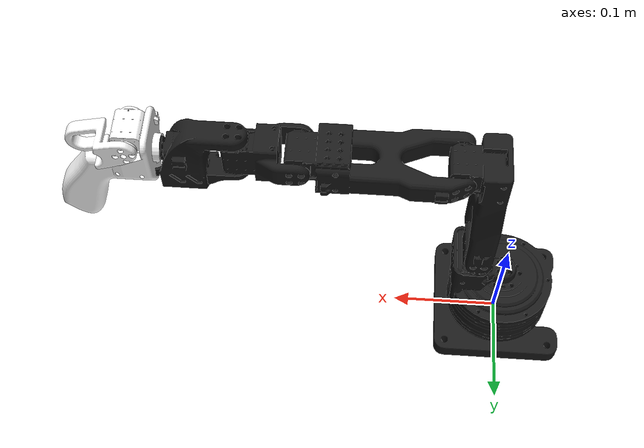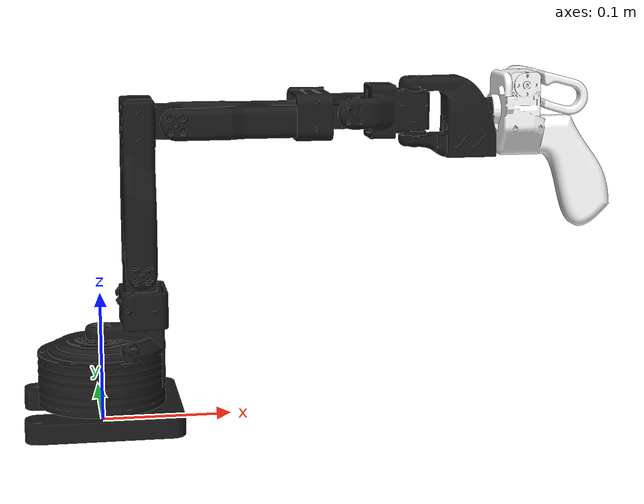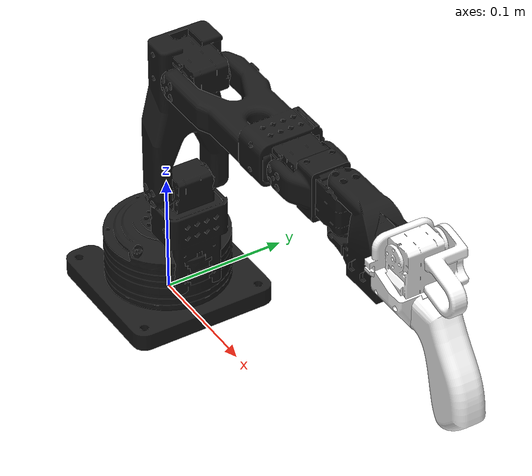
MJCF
<mujoco model="so101_6dofleader">
  <compiler angle="radian" meshdir="../assets" autolimits="true"/>

  <option timestep="0.002" solver="Newton" iterations="50" tolerance="1e-10"/>

  <default>
    <default class="so101_6dofleader">
      <default class="visual">
        <geom type="mesh" contype="0" conaffinity="0" group="2"/>
      </default>
      <default class="collision">
        <geom group="3"/>
      </default>
    </default>
    <default class="sts3215">
      <geom contype="0" conaffinity="0"/>
      <joint damping="0.60" frictionloss="0.052" armature="0.028"/>
      <position kp="50" dampratio="1"/>
    </default>
  </default>

  <asset>
    <mesh name="link0" file="link0.STL"/>
    <mesh name="link1" file="link1.STL"/>
    <mesh name="link2" file="link2.STL"/>
    <mesh name="link3" file="link3.STL"/>
    <mesh name="link4" file="link4.STL"/>
    <mesh name="link5" file="link5.STL"/>
    <mesh name="link6" file="link6.STL"/>
    <mesh name="link7" file="link7.STL"/>
  </asset>

  <worldbody>
    <geom type="mesh" rgba="0.1 0.1 0.1 1" mesh="link0" class="visual"/>
    <geom type="mesh" mesh="link0" class="visual"/>
    <body name="link1" pos="0 0 0.018957" childclass="so101_6dofleader">
      <inertial pos="0.030989 6.7477e-05 0.070621" quat="0.698515 0.0490132 0.042294 0.712661" mass="0.2" diaginertia="0.0001 0.0001 0.00005"/>
      <joint name="joint1" pos="0 0 0" axis="0 0 1" range="-1.9198621771937616 1.9198621771937634" class="sts3215" ref="0"/>
      <geom type="mesh" rgba="0.1 0.1 0.1 1" mesh="link1" class="visual"/>
      <geom type="mesh" mesh="link1" class="visual"/>

      <body name="link2" pos="0.0306 0 0.10044">
        <inertial pos="0.0074975 -0.00041663 0.088369" quat="0.999937 0.00717546 -0.00848347 0.00167263" mass="0.10147" diaginertia="0.0001 0.0001 0.00005"/>
        <joint name="joint2" pos="0 0 0" axis="0 1 0" range="-1.7453292519943224 1.7453292519943366" class="sts3215" ref="0"/>
        <geom type="mesh" rgba="0.1 0.1 0.1 1" mesh="link2" class="visual"/>
        <geom type="mesh" mesh="link2" class="collision"/>
        <body name="link3" pos="0.028 0 0.11248">
          <inertial pos="0.095367 -0.0010139 0.0029488" quat="-0.00465535 0.713391 0.00569161 0.700727" mass="0.09724" diaginertia="5.81959e-05 4.73186e-05 2.10425e-05"/>
          <joint name="joint3" pos="0 0 0" axis="0 1 0" range="-1.7 1.7" class="sts3215" ref="0"/>
          <geom type="mesh" rgba="0.1 0.1 0.1 1" mesh="link3"/>
          <body name="link4" pos="0.13485 0 0.0052">
            <inertial pos="0.035618 -0.0010712 -0.00022605" quat="0.000479801 0.707579 -0.000372452 0.706634" mass="0.061621" diaginertia="1.2754e-05 9.95891e-06 6.12958e-06"/>
            <joint name="joint4" pos="0 0 0" axis="0 1 0" range="-1.7 1.7" class="sts3215" ref="0"/>
            <geom type="mesh" rgba="0.1 0.1 0.1 1" mesh="link4"/>
            <body name="link5" pos="0.05175 -0.0012 0">
              <inertial pos="0.0395734 0.000195111 -0.0125068" quat="0.697286 -0.0344273 -0.0342671 0.715145" mass="0.067412" diaginertia="1.82556e-05 1.66275e-05 8.78104e-06"/>
              <joint name="joint5" pos="0 0 0" axis="0 0 1" range="-1.9 1.9" class="sts3215" ref="0"/>
              <geom type="mesh" rgba="0.1 0.1 0.1 1" mesh="link5"/>
              <body name="link6" pos="0.060497 0 -0.0011">
                <inertial pos="0.0358639 0.000287019 -0.0118171" quat="0.673687 -0.124385 -0.113726 0.719542" mass="0.0982876" diaginertia="3.51223e-05 3.30232e-05 1.20109e-05"/>
                <joint name="joint6" pos="0 0 0" axis="1 0 0" range="-2.8 2.8" class="sts3215" ref="0"/>
                <geom type="mesh" rgba="1 1 1 1" mesh="link6"/>
                <body name="link7" pos="0.024403 0 0.0202">
                  <inertial pos="0.0244627 0.00933262 -0.00616883" quat="0.517744 0.715577 0.341818 0.321016" mass="0.00447082" diaginertia="1.90444e-06 1.68449e-06 5.33007e-07"/>
                  <joint name="joint7" pos="0 0 0" axis="0 1 0" range="-2 0" class="sts3215" ref="0"/>
                  <geom type="mesh" rgba="1 1 1 1" mesh="link7"/>
                </body>
              </body>
            </body>
          </body>
        </body>
      </body>
    </body>
  </worldbody>

  <actuator>
    <position class="sts3215" name="joint1" joint="joint1" ctrlrange="-1.9 1.9" forcerange="-3.35 3.35"/>
    <position class="sts3215" name="joint2" joint="joint2" ctrlrange="-1.7 1.7" forcerange="-3.35 3.35"/>
    <position class="sts3215" name="joint3" joint="joint3" ctrlrange="-1.7 1.7" forcerange="-3.35 3.35"/>
    <position class="sts3215" name="joint4" joint="joint4" ctrlrange="-1.7 1.7" forcerange="-3.35 3.35"/>
    <position class="sts3215" name="joint5" joint="joint5" ctrlrange="-1.9 1.9" forcerange="-3.35 3.35"/>
    <position class="sts3215" name="joint6" joint="joint6" ctrlrange="-2.8 2.8" forcerange="-3.35 3.35"/>
    <position class="sts3215" name="joint7" joint="joint7" ctrlrange="-2 0" forcerange="-3.35 3.35"/>
  </actuator>
</mujoco>
